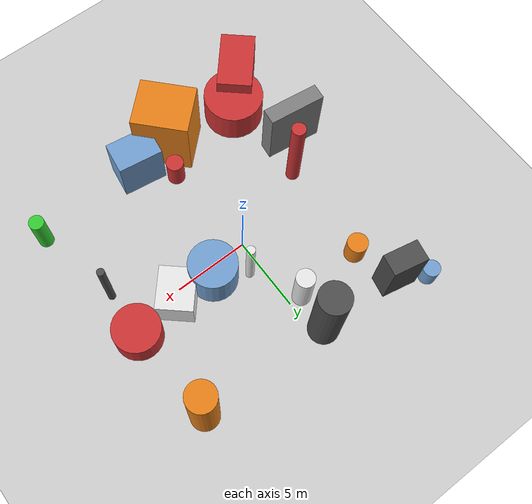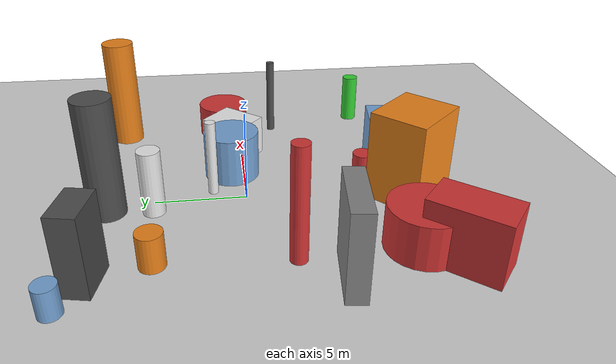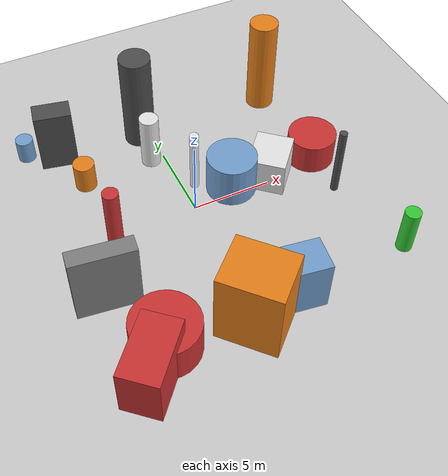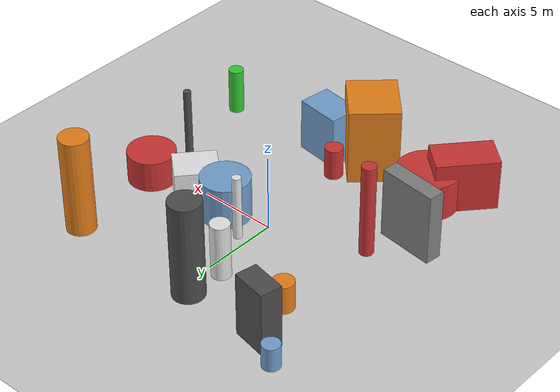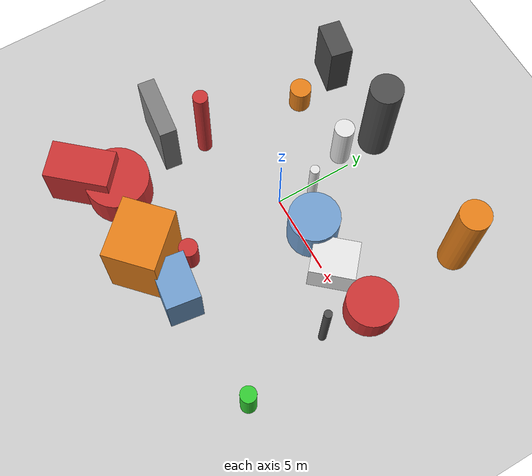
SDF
<?xml version='1.0'?>
<sdf version='1.6'>
  <world name='default'>
    <!-- Sun light -->
    <light name='sun' type='directional'>
      <cast_shadows>1</cast_shadows>
      <pose>0 0 10 0 0 0</pose>
      <diffuse>0.8 0.8 0.8 1</diffuse>
      <specular>0.2 0.2 0.2 1</specular>
      <attenuation>
        <range>1000</range>
        <constant>0.9</constant>
        <linear>0.01</linear>
        <quadratic>0.001</quadratic>
      </attenuation>
      <direction>-0.5 0.1 -0.9</direction>
    </light>

    <!-- Ground plane -->
    <model name='ground_plane'>
      <static>1</static>
      <link name='link'>
        <collision name='collision'>
          <geometry>
            <plane>
              <normal>0 0 1</normal>
              <size>100 100</size>
            </plane>
          </geometry>
          <surface>
            <contact>
              <collide_bitmask>65535</collide_bitmask>
              <ode/>
            </contact>
            <friction>
              <ode>
                <mu>100</mu>
                <mu2>50</mu2>
              </ode>
              <torsional><ode/></torsional>
            </friction>
            <bounce/>
          </surface>
          <max_contacts>10</max_contacts>
        </collision>
        <visual name='visual'>
          <cast_shadows>0</cast_shadows>
          <geometry>
            <plane>
              <normal>0 0 1</normal>
              <size>100 100</size>
            </plane>
          </geometry>
          <material>
            <script>
              <uri>file://media/materials/scripts/gazebo.material</uri>
              <n>Gazebo/Grey</n>
            </script>
          </material>
        </visual>
      </link>
    </model>

    <!-- Environment -->
    <magnetic_field>6e-06 2.3e-05 -4.2e-05</magnetic_field>
    <atmosphere type='adiabatic'/>
    <physics name='default_physics' default='0' type='ode'>
      <gravity>0 0 -9.8</gravity>
      <max_step_size>0.004</max_step_size>
      <real_time_factor>1</real_time_factor>
      <real_time_update_rate>250</real_time_update_rate>
    </physics>
    <scene>
      <ambient>0.4 0.4 0.4 1</ambient>
      <background>0.7 0.7 0.7 1</background>
      <shadows>1</shadows>
    </scene>
    <wind/>
    <spherical_coordinates>
      <surface_model>EARTH_WGS84</surface_model>
      <latitude_deg>0</latitude_deg>
      <longitude_deg>0</longitude_deg>
      <elevation>0</elevation>
      <heading_deg>0</heading_deg>
    </spherical_coordinates>

    <!-- ============ OBSTACLES (19) ============ -->
    <model name='obs_00'>
      <static>1</static>
      <link name='link'>
        <visual name='visual'>
          <geometry>
            <cylinder>
              <radius>0.4520</radius>
              <length>6.1598</length>
            </cylinder>
          </geometry>
          <material>
            <script>
              <n>Gazebo/Red</n>
              <uri>file://media/materials/scripts/gazebo.material</uri>
            </script>
            <ambient>0.8 0.2 0.2 1</ambient>
          </material>
        </visual>
        <collision name='collision'>
          <geometry>
            <cylinder>
              <radius>0.4520</radius>
              <length>6.1598</length>
            </cylinder>
          </geometry>
          <max_contacts>10</max_contacts>
          <surface>
            <contact><ode/></contact>
            <bounce/>
            <friction>
              <ode><mu>1</mu><mu2>1</mu2></ode>
              <torsional><ode/></torsional>
            </friction>
          </surface>
        </collision>
      </link>
      <pose>-5.7886 -2.0591 3.0799 0 0 1.2402</pose>
    </model>

    <model name='obs_01'>
      <static>1</static>
      <link name='link'>
        <visual name='visual'>
          <geometry>
            <cylinder>
              <radius>0.5581</radius>
              <length>1.5545</length>
            </cylinder>
          </geometry>
          <material>
            <script>
              <n>Gazebo/Blue</n>
              <uri>file://media/materials/scripts/gazebo.material</uri>
            </script>
            <ambient>0.447 0.624 0.812 1</ambient>
          </material>
        </visual>
        <collision name='collision'>
          <geometry>
            <cylinder>
              <radius>0.5581</radius>
              <length>1.5545</length>
            </cylinder>
          </geometry>
          <max_contacts>10</max_contacts>
          <surface>
            <contact><ode/></contact>
            <bounce/>
            <friction>
              <ode><mu>1</mu><mu2>1</mu2></ode>
              <torsional><ode/></torsional>
            </friction>
          </surface>
        </collision>
      </link>
      <pose>-8.0889 8.7359 0.7772 0 0 2.6026</pose>
    </model>

    <model name='obs_02'>
      <static>1</static>
      <link name='link'>
        <visual name='visual'>
          <geometry>
            <box>
              <size>3.1759 3.6848 5.0379</size>
            </box>
          </geometry>
          <material>
            <script>
              <n>Gazebo/Orange</n>
              <uri>file://media/materials/scripts/gazebo.material</uri>
            </script>
            <ambient>0.9 0.5 0.1 1</ambient>
          </material>
        </visual>
        <collision name='collision'>
          <geometry>
            <box>
              <size>3.1759 3.6848 5.0379</size>
            </box>
          </geometry>
          <max_contacts>10</max_contacts>
          <surface>
            <contact><ode/></contact>
            <bounce/>
            <friction>
              <ode><mu>1</mu><mu2>1</mu2></ode>
              <torsional><ode/></torsional>
            </friction>
          </surface>
        </collision>
      </link>
      <pose>-0.5363 -8.9235 2.5189 0 0 0.7526</pose>
    </model>

    <model name='obs_03'>
      <static>1</static>
      <link name='link'>
        <visual name='visual'>
          <geometry>
            <box>
              <size>2.7696 2.3618 2.3441</size>
            </box>
          </geometry>
          <material>
            <script>
              <n>Gazebo/White</n>
              <uri>file://media/materials/scripts/gazebo.material</uri>
            </script>
            <ambient>0.9 0.9 0.9 1</ambient>
          </material>
        </visual>
        <collision name='collision'>
          <geometry>
            <box>
              <size>2.7696 2.3618 2.3441</size>
            </box>
          </geometry>
          <max_contacts>10</max_contacts>
          <surface>
            <contact><ode/></contact>
            <bounce/>
            <friction>
              <ode><mu>1</mu><mu2>1</mu2></ode>
              <torsional><ode/></torsional>
            </friction>
          </surface>
        </collision>
      </link>
      <pose>5.4187 0.4797 1.1721 0 0 0.8541</pose>
    </model>

    <model name='obs_04'>
      <static>1</static>
      <link name='link'>
        <visual name='visual'>
          <geometry>
            <cylinder>
              <radius>0.4875</radius>
              <length>3.0272</length>
            </cylinder>
          </geometry>
          <material>
            <script>
              <n>Gazebo/Green</n>
              <uri>file://media/materials/scripts/gazebo.material</uri>
            </script>
            <ambient>0.2 0.8 0.2 1</ambient>
          </material>
        </visual>
        <collision name='collision'>
          <geometry>
            <cylinder>
              <radius>0.4875</radius>
              <length>3.0272</length>
            </cylinder>
          </geometry>
          <max_contacts>10</max_contacts>
          <surface>
            <contact><ode/></contact>
            <bounce/>
            <friction>
              <ode><mu>1</mu><mu2>1</mu2></ode>
              <torsional><ode/></torsional>
            </friction>
          </surface>
        </collision>
      </link>
      <pose>9.9203 -7.9214 1.5136 0 0 2.6813</pose>
    </model>

    <model name='obs_05'>
      <static>1</static>
      <link name='link'>
        <visual name='visual'>
          <geometry>
            <box>
              <size>2.0847 2.9517 3.4600</size>
            </box>
          </geometry>
          <material>
            <script>
              <n>Gazebo/Blue</n>
              <uri>file://media/materials/scripts/gazebo.material</uri>
            </script>
            <ambient>0.447 0.624 0.812 1</ambient>
          </material>
        </visual>
        <collision name='collision'>
          <geometry>
            <box>
              <size>2.0847 2.9517 3.4600</size>
            </box>
          </geometry>
          <max_contacts>10</max_contacts>
          <surface>
            <contact><ode/></contact>
            <bounce/>
            <friction>
              <ode><mu>1</mu><mu2>1</mu2></ode>
              <torsional><ode/></torsional>
            </friction>
          </surface>
        </collision>
      </link>
      <pose>2.3620 -8.3138 1.7300 0 0 1.4305</pose>
    </model>

    <model name='obs_06'>
      <static>1</static>
      <link name='link'>
        <visual name='visual'>
          <geometry>
            <cylinder>
              <radius>0.2418</radius>
              <length>4.7448</length>
            </cylinder>
          </geometry>
          <material>
            <script>
              <n>Gazebo/DarkGrey</n>
              <uri>file://media/materials/scripts/gazebo.material</uri>
            </script>
            <ambient>0.3 0.3 0.3 1</ambient>
          </material>
        </visual>
        <collision name='collision'>
          <geometry>
            <cylinder>
              <radius>0.2418</radius>
              <length>4.7448</length>
            </cylinder>
          </geometry>
          <max_contacts>10</max_contacts>
          <surface>
            <contact><ode/></contact>
            <bounce/>
            <friction>
              <ode><mu>1</mu><mu2>1</mu2></ode>
              <torsional><ode/></torsional>
            </friction>
          </surface>
        </collision>
      </link>
      <pose>8.6318 -2.2031 2.3724 0 0 0.0609</pose>
    </model>

    <model name='obs_07'>
      <static>1</static>
      <link name='link'>
        <visual name='visual'>
          <geometry>
            <cylinder>
              <radius>0.6719</radius>
              <length>1.8753</length>
            </cylinder>
          </geometry>
          <material>
            <script>
              <n>Gazebo/Orange</n>
              <uri>file://media/materials/scripts/gazebo.material</uri>
            </script>
            <ambient>0.9 0.5 0.1 1</ambient>
          </material>
        </visual>
        <collision name='collision'>
          <geometry>
            <cylinder>
              <radius>0.6719</radius>
              <length>1.8753</length>
            </cylinder>
          </geometry>
          <max_contacts>10</max_contacts>
          <surface>
            <contact><ode/></contact>
            <bounce/>
            <friction>
              <ode><mu>1</mu><mu2>1</mu2></ode>
              <torsional><ode/></torsional>
            </friction>
          </surface>
        </collision>
      </link>
      <pose>-5.4129 4.7519 0.9376 0 0 3.0547</pose>
    </model>

    <model name='obs_08'>
      <static>1</static>
      <link name='link'>
        <visual name='visual'>
          <geometry>
            <cylinder>
              <radius>0.5807</radius>
              <length>2.0548</length>
            </cylinder>
          </geometry>
          <material>
            <script>
              <n>Gazebo/Red</n>
              <uri>file://media/materials/scripts/gazebo.material</uri>
            </script>
            <ambient>0.8 0.2 0.2 1</ambient>
          </material>
        </visual>
        <collision name='collision'>
          <geometry>
            <cylinder>
              <radius>0.5807</radius>
              <length>2.0548</length>
            </cylinder>
          </geometry>
          <max_contacts>10</max_contacts>
          <surface>
            <contact><ode/></contact>
            <bounce/>
            <friction>
              <ode><mu>1</mu><mu2>1</mu2></ode>
              <torsional><ode/></torsional>
            </friction>
          </surface>
        </collision>
      </link>
      <pose>0.5348 -6.5878 1.0274 0 0 2.2843</pose>
    </model>

    <model name='obs_09'>
      <static>1</static>
      <link name='link'>
        <visual name='visual'>
          <geometry>
            <cylinder>
              <radius>0.9274</radius>
              <length>6.5001</length>
            </cylinder>
          </geometry>
          <material>
            <script>
              <n>Gazebo/Orange</n>
              <uri>file://media/materials/scripts/gazebo.material</uri>
            </script>
            <ambient>0.9 0.5 0.1 1</ambient>
          </material>
        </visual>
        <collision name='collision'>
          <geometry>
            <cylinder>
              <radius>0.9274</radius>
              <length>6.5001</length>
            </cylinder>
          </geometry>
          <max_contacts>10</max_contacts>
          <surface>
            <contact><ode/></contact>
            <bounce/>
            <friction>
              <ode><mu>1</mu><mu2>1</mu2></ode>
              <torsional><ode/></torsional>
            </friction>
          </surface>
        </collision>
      </link>
      <pose>8.3054 7.2848 3.2500 0 0 0.6823</pose>
    </model>

    <model name='obs_10'>
      <static>1</static>
      <link name='link'>
        <visual name='visual'>
          <geometry>
            <cylinder>
              <radius>1.0078</radius>
              <length>6.5400</length>
            </cylinder>
          </geometry>
          <material>
            <script>
              <n>Gazebo/DarkGrey</n>
              <uri>file://media/materials/scripts/gazebo.material</uri>
            </script>
            <ambient>0.3 0.3 0.3 1</ambient>
          </material>
        </visual>
        <collision name='collision'>
          <geometry>
            <cylinder>
              <radius>1.0078</radius>
              <length>6.5400</length>
            </cylinder>
          </geometry>
          <max_contacts>10</max_contacts>
          <surface>
            <contact><ode/></contact>
            <bounce/>
            <friction>
              <ode><mu>1</mu><mu2>1</mu2></ode>
              <torsional><ode/></torsional>
            </friction>
          </surface>
        </collision>
      </link>
      <pose>-0.6561 7.4180 3.2700 0 0 3.1352</pose>
    </model>

    <model name='obs_11'>
      <static>1</static>
      <link name='link'>
        <visual name='visual'>
          <geometry>
            <cylinder>
              <radius>1.5386</radius>
              <length>2.0226</length>
            </cylinder>
          </geometry>
          <material>
            <script>
              <n>Gazebo/Red</n>
              <uri>file://media/materials/scripts/gazebo.material</uri>
            </script>
            <ambient>0.8 0.2 0.2 1</ambient>
          </material>
        </visual>
        <collision name='collision'>
          <geometry>
            <cylinder>
              <radius>1.5386</radius>
              <length>2.0226</length>
            </cylinder>
          </geometry>
          <max_contacts>10</max_contacts>
          <surface>
            <contact><ode/></contact>
            <bounce/>
            <friction>
              <ode><mu>1</mu><mu2>1</mu2></ode>
              <torsional><ode/></torsional>
            </friction>
          </surface>
        </collision>
      </link>
      <pose>8.6972 0.9709 1.0113 0 0 0.2520</pose>
    </model>

    <model name='obs_12'>
      <static>1</static>
      <link name='link'>
        <visual name='visual'>
          <geometry>
            <cylinder>
              <radius>0.2821</radius>
              <length>4.2910</length>
            </cylinder>
          </geometry>
          <material>
            <script>
              <n>Gazebo/White</n>
              <uri>file://media/materials/scripts/gazebo.material</uri>
            </script>
            <ambient>0.9 0.9 0.9 1</ambient>
          </material>
        </visual>
        <collision name='collision'>
          <geometry>
            <cylinder>
              <radius>0.2821</radius>
              <length>4.2910</length>
            </cylinder>
          </geometry>
          <max_contacts>10</max_contacts>
          <surface>
            <contact><ode/></contact>
            <bounce/>
            <friction>
              <ode><mu>1</mu><mu2>1</mu2></ode>
              <torsional><ode/></torsional>
            </friction>
          </surface>
        </collision>
      </link>
      <pose>0.7858 1.8166 2.1455 0 0 2.4368</pose>
    </model>

    <model name='obs_13'>
      <static>1</static>
      <link name='link'>
        <visual name='visual'>
          <geometry>
            <cylinder>
              <radius>0.6126</radius>
              <length>3.6710</length>
            </cylinder>
          </geometry>
          <material>
            <script>
              <n>Gazebo/White</n>
              <uri>file://media/materials/scripts/gazebo.material</uri>
            </script>
            <ambient>0.9 0.9 0.9 1</ambient>
          </material>
        </visual>
        <collision name='collision'>
          <geometry>
            <cylinder>
              <radius>0.6126</radius>
              <length>3.6710</length>
            </cylinder>
          </geometry>
          <max_contacts>10</max_contacts>
          <surface>
            <contact><ode/></contact>
            <bounce/>
            <friction>
              <ode><mu>1</mu><mu2>1</mu2></ode>
              <torsional><ode/></torsional>
            </friction>
          </surface>
        </collision>
      </link>
      <pose>-0.8691 4.9782 1.8355 0 0 2.8139</pose>
    </model>

    <model name='obs_14'>
      <static>1</static>
      <link name='link'>
        <visual name='visual'>
          <geometry>
            <cylinder>
              <radius>1.5711</radius>
              <length>2.7427</length>
            </cylinder>
          </geometry>
          <material>
            <script>
              <n>Gazebo/Blue</n>
              <uri>file://media/materials/scripts/gazebo.material</uri>
            </script>
            <ambient>0.447 0.624 0.812 1</ambient>
          </material>
        </visual>
        <collision name='collision'>
          <geometry>
            <cylinder>
              <radius>1.5711</radius>
              <length>2.7427</length>
            </cylinder>
          </geometry>
          <max_contacts>10</max_contacts>
          <surface>
            <contact><ode/></contact>
            <bounce/>
            <friction>
              <ode><mu>1</mu><mu2>1</mu2></ode>
              <torsional><ode/></torsional>
            </friction>
          </surface>
        </collision>
      </link>
      <pose>2.7957 0.6757 1.3714 0 0 0.3832</pose>
    </model>

    <model name='obs_15'>
      <static>1</static>
      <link name='link'>
        <visual name='visual'>
          <geometry>
            <cylinder>
              <radius>1.9899</radius>
              <length>2.3943</length>
            </cylinder>
          </geometry>
          <material>
            <script>
              <n>Gazebo/Red</n>
              <uri>file://media/materials/scripts/gazebo.material</uri>
            </script>
            <ambient>0.8 0.2 0.2 1</ambient>
          </material>
        </visual>
        <collision name='collision'>
          <geometry>
            <cylinder>
              <radius>1.9899</radius>
              <length>2.3943</length>
            </cylinder>
          </geometry>
          <max_contacts>10</max_contacts>
          <surface>
            <contact><ode/></contact>
            <bounce/>
            <friction>
              <ode><mu>1</mu><mu2>1</mu2></ode>
              <torsional><ode/></torsional>
            </friction>
          </surface>
        </collision>
      </link>
      <pose>-5.4574 -8.2089 1.1971 0 0 0.7765</pose>
    </model>

    <model name='obs_16'>
      <static>1</static>
      <link name='link'>
        <visual name='visual'>
          <geometry>
            <box>
              <size>2.3240 3.9374 3.3641</size>
            </box>
          </geometry>
          <material>
            <script>
              <n>Gazebo/Red</n>
              <uri>file://media/materials/scripts/gazebo.material</uri>
            </script>
            <ambient>0.8 0.2 0.2 1</ambient>
          </material>
        </visual>
        <collision name='collision'>
          <geometry>
            <box>
              <size>2.3240 3.9374 3.3641</size>
            </box>
          </geometry>
          <max_contacts>10</max_contacts>
          <surface>
            <contact><ode/></contact>
            <bounce/>
            <friction>
              <ode><mu>1</mu><mu2>1</mu2></ode>
              <torsional><ode/></torsional>
            </friction>
          </surface>
        </collision>
      </link>
      <pose>-6.8856 -9.7889 1.6821 0 0 2.4222</pose>
    </model>

    <model name='obs_17'>
      <static>1</static>
      <link name='link'>
        <visual name='visual'>
          <geometry>
            <box>
              <size>3.7768 1.0551 4.6412</size>
            </box>
          </geometry>
          <material>
            <script>
              <n>Gazebo/Grey</n>
              <uri>file://media/materials/scripts/gazebo.material</uri>
            </script>
            <ambient>0.5 0.5 0.5 1</ambient>
          </material>
        </visual>
        <collision name='collision'>
          <geometry>
            <box>
              <size>3.7768 1.0551 4.6412</size>
            </box>
          </geometry>
          <max_contacts>10</max_contacts>
          <surface>
            <contact><ode/></contact>
            <bounce/>
            <friction>
              <ode><mu>1</mu><mu2>1</mu2></ode>
              <torsional><ode/></torsional>
            </friction>
          </surface>
        </collision>
      </link>
      <pose>-7.2740 -4.2648 2.3206 0 0 3.0197</pose>
    </model>

    <model name='obs_18'>
      <static>1</static>
      <link name='link'>
        <visual name='visual'>
          <geometry>
            <box>
              <size>2.3232 1.3866 4.1926</size>
            </box>
          </geometry>
          <material>
            <script>
              <n>Gazebo/DarkGrey</n>
              <uri>file://media/materials/scripts/gazebo.material</uri>
            </script>
            <ambient>0.3 0.3 0.3 1</ambient>
          </material>
        </visual>
        <collision name='collision'>
          <geometry>
            <box>
              <size>2.3232 1.3866 4.1926</size>
            </box>
          </geometry>
          <max_contacts>10</max_contacts>
          <surface>
            <contact><ode/></contact>
            <bounce/>
            <friction>
              <ode><mu>1</mu><mu2>1</mu2></ode>
              <torsional><ode/></torsional>
            </friction>
          </surface>
        </collision>
      </link>
      <pose>-6.2286 7.6432 2.0963 0 0 2.9450</pose>
    </model>

    <!-- GUI camera -->
    <gui fullscreen='0'>
      <camera name='user_camera'>
        <pose>-15 0 18 0 0.85 0.15</pose>
        <view_controller>orbit</view_controller>
        <projection_type>perspective</projection_type>
      </camera>
    </gui>
  </world>
</sdf>
